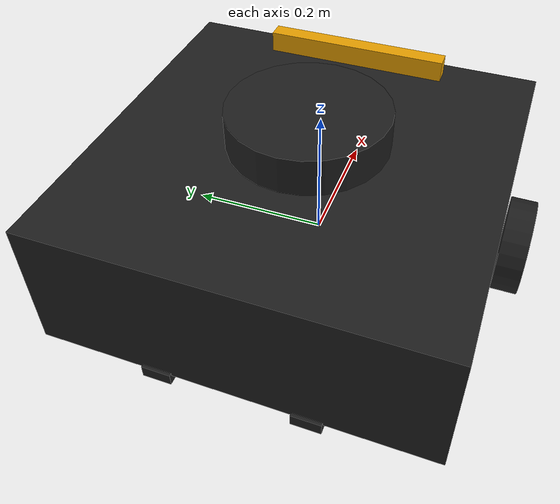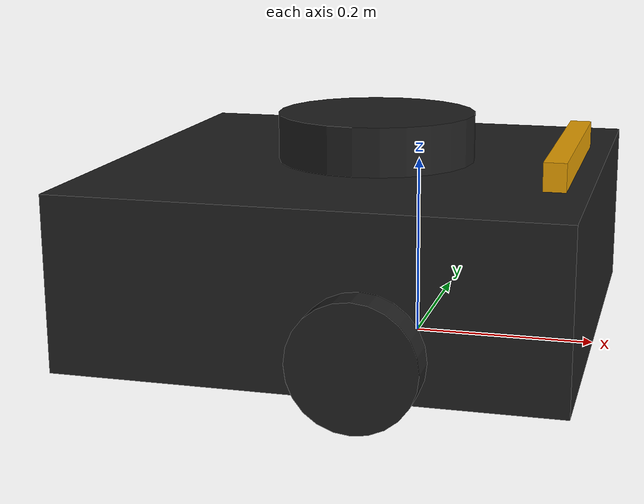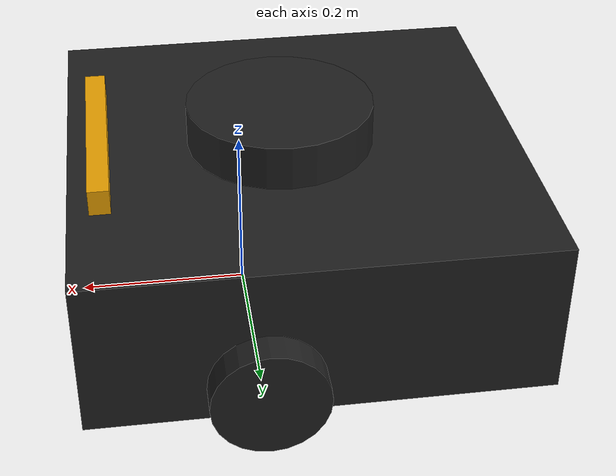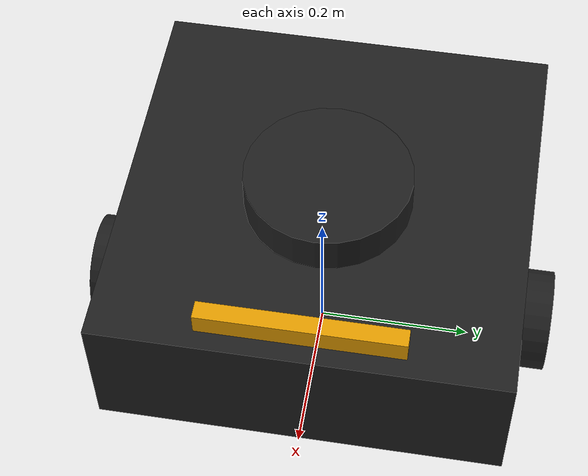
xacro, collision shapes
<?xml version="1.0" ?>
<robot name="turtlebot3_waffle" xmlns:xacro="http://ros.org/wiki/xacro">
  <xacro:include filename="$(find turtlebot3_description)/urdf/common_properties.xacro"/>
  <xacro:include filename="$(find turtlebot3_description)/urdf/turtlebot3_waffle_bigger.gazebo.xacro"/>

  <xacro:property name="r200_cam_rgb_px" value="0.005"/>
  <xacro:property name="r200_cam_rgb_py" value="0.018"/>
  <xacro:property name="r200_cam_rgb_pz" value="0.013"/>
  <xacro:property name="r200_cam_depth_offset" value="0.01"/>

  <link name="base_footprint"/>

  <joint name="base_joint" type="fixed">
    <parent link="base_footprint"/>
    <child link="base_link" />
    <origin xyz="0 0 0.010" rpy="0 0 0"/>
  </joint>

  <link name="base_link">
    <visual>
      <origin xyz="-0.064 0 0.0" rpy="0 0 0"/>
      <geometry>
        <mesh filename="package://turtlebot3_description/meshes/bases/waffle_base.stl" scale="0.002 0.002 0.002"/>
      </geometry>
      <material name="light_black"/>
    </visual>

    <collision>
      <origin xyz="-0.064 0 0.094" rpy="0 0 0"/>
      <geometry>
        <box size="0.532 0.532 0.188"/>
      </geometry>
    </collision>

    <inertial>
      <origin xyz="0 0 0" rpy="0 0 0"/>
      <mass value="1.3729096e+00"/>
      <inertia ixx="8.7002718e-03" ixy="-4.7576583e-05" ixz="1.1160499e-04"
               iyy="8.6195418e-03" iyz="-3.5422299e-06"
               izz="1.4612727e-02" />
    </inertial>
  </link>

  <joint name="wheel_left_joint" type="continuous">
    <parent link="base_link"/>
    <child link="wheel_left_link"/>
    <origin xyz="0.0 0.288 0.046" rpy="-1.57 0 0"/>
    <axis xyz="0 0 1"/>
    <dynamics damping="0.0" friction="0.0"/>
  </joint>

  <link name="wheel_left_link">
    <visual>
      <origin xyz="0 0 0" rpy="1.57 0 0"/>
      <geometry>
        <mesh filename="package://turtlebot3_description/meshes/wheels/left_tire.stl" scale="0.002 0.002 0.002"/>
      </geometry>
      <material name="dark"/>
    </visual>

    <collision>
      <origin xyz="0 0 0" rpy="0 0 0"/>
      <geometry>
        <cylinder length="0.036" radius="0.066"/>
      </geometry>
    </collision>

    <inertial>
      <origin xyz="0 0 0" />
      <mass value="2.8498940e-02" />
      <inertia ixx="1.1175580e-05" ixy="-4.2369783e-11" ixz="-5.9381719e-09"
               iyy="1.1192413e-05" iyz="-1.4400107e-11"
               izz="2.0712558e-05" />
      </inertial>
  </link>

  <joint name="wheel_right_joint" type="continuous">
    <parent link="base_link"/>
    <child link="wheel_right_link"/>
    <origin xyz="0.0 -0.288 0.046" rpy="-1.57 0 0"/>
    <axis xyz="0 0 1"/>
  </joint>

  <link name="wheel_right_link">
    <visual>
      <origin xyz="0 0 0" rpy="1.57 0 0"/>
      <geometry>
        <mesh filename="package://turtlebot3_description/meshes/wheels/right_tire.stl" scale="0.002 0.002 0.002"/>
      </geometry>
      <material name="dark"/>
    </visual>

    <collision>
      <origin xyz="0 0 0" rpy="0 0 0"/>
      <geometry>
        <cylinder length="0.036" radius="0.066"/>
      </geometry>
    </collision>

    <inertial>
      <origin xyz="0 0 0" />
      <mass value="2.8498940e-02" />
      <inertia ixx="1.1175580e-05" ixy="-4.2369783e-11" ixz="-5.9381719e-09"
               iyy="1.1192413e-05" iyz="-1.4400107e-11"
               izz="2.0712558e-05" />
      </inertial>
  </link>

  <joint name="caster_back_right_joint" type="fixed">
    <parent link="base_link"/>
    <child link="caster_back_right_link"/>
    <origin xyz="-0.304 -0.10 -0.004" rpy="-1.57 0 0"/>
  </joint>

  <link name="caster_back_right_link">
    <collision>
      <origin xyz="0 0.001 0" rpy="0 0 0"/>
      <geometry>
        <box size="0.060 0.018 0.040"/>
      </geometry>
    </collision>

    <inertial>
      <origin xyz="0 0 0" />
      <mass value="0.005" />
      <inertia ixx="0.001" ixy="0.0" ixz="0.0"
               iyy="0.001" iyz="0.0"
               izz="0.001" />
    </inertial>
  </link>

  <joint name="caster_back_left_joint" type="fixed">
    <parent link="base_link"/>
    <child link="caster_back_left_link"/>
    <origin xyz="-0.304 0.10 -0.004" rpy="-1.57 0 0"/>
  </joint>

  <link name="caster_back_left_link">
    <collision>
      <origin xyz="0 0.001 0" rpy="0 0 0"/>
      <geometry>
        <box size="0.060 0.018 0.040"/>
      </geometry>
    </collision>

    <inertial>
      <origin xyz="0 0 0" />
      <mass value="0.005" />
      <inertia ixx="0.001" ixy="0.0" ixz="0.0"
               iyy="0.001" iyz="0.0"
               izz="0.001" />
    </inertial>
  </link>

  <joint name="imu_joint" type="fixed">
    <parent link="base_link"/>
    <child link="imu_link"/>
    <origin xyz="0.0 0 0.162" rpy="0 0 0"/>
  </joint>

  <link name="imu_link"/>

  <joint name="scan_joint" type="fixed">
    <parent link="base_link"/>
    <child link="base_scan"/>
    <origin xyz="-0.064 0 0.216" rpy="0 0 0"/>
  </joint>

  <link name="base_scan">
    <visual>
      <origin xyz="0 0 0.01" rpy="0 0 0"/>
      <geometry>
        <mesh filename="package://turtlebot3_description/meshes/sensors/lds.stl" scale="0.003 0.003 0.003"/>
      </geometry>
      <material name="dark"/>
    </visual>

    <collision>
      <origin xyz="0.015 0 -0.0065" rpy="0 0 0"/>
      <geometry>
        <cylinder length="0.063" radius="0.11"/>
      </geometry>
    </collision>

    <inertial>
      <mass value="0.114" />
      <origin xyz="0 0 0" />
      <inertia ixx="0.001" ixy="0.0" ixz="0.0"
               iyy="0.001" iyz="0.0"
               izz="0.001" />
    </inertial>
  </link>

  <joint name="camera_joint" type="fixed">
    <origin xyz="0.164 0 0.188" rpy="0 0 0"/>
    <parent link="base_link"/>
    <child link="camera_link"/>
  </joint>

  <link name="camera_link">
    <visual>
     <origin xyz="0.0015 -0.127 0.00" rpy="1.57 0 1.57"/>
      <geometry>
       <mesh filename="package://turtlebot3_description/meshes/sensors/r200.dae" scale="2 2 2"/>
      </geometry>
    </visual>
    <collision>
      <origin xyz="0.0015 0.000 0.01" rpy="0 0 0"/>
      <geometry>
        <box size="0.024 0.264 0.040"/>
      </geometry>
    </collision>

    <!-- This inertial field needs doesn't contain reliable data!! -->
  </link>

  <joint name="camera_rgb_joint" type="fixed">
    <origin xyz="${r200_cam_rgb_px} ${r200_cam_rgb_py} ${r200_cam_rgb_pz}" rpy="0 0 0"/>
    <parent link="camera_link"/>
    <child link="camera_rgb_frame"/>
  </joint>
  <link name="camera_rgb_frame"/>

  <joint name="camera_rgb_optical_joint" type="fixed">
    <origin xyz="0 0 0" rpy="-1.57 0 -1.57"/>
    <parent link="camera_rgb_frame"/>
    <child link="camera_rgb_optical_frame"/>
  </joint>
  <link name="camera_rgb_optical_frame"/>

  <joint name="camera_depth_joint" type="fixed">
    <origin xyz="${r200_cam_rgb_px} ${r200_cam_rgb_py + r200_cam_depth_offset} ${r200_cam_rgb_pz}" rpy="0 0 0"/>
    <parent link="camera_link"/>
    <child link="camera_depth_frame"/>
  </joint>
  <link name="camera_depth_frame"/>

  <joint name="camera_depth_optical_joint" type="fixed">
    <origin xyz="0 0 0" rpy="-1.57 0 -1.57"/>
    <parent link="camera_depth_frame"/>
    <child link="camera_depth_optical_frame"/>
  </joint>
  <link name="camera_depth_optical_frame"/>

</robot>
